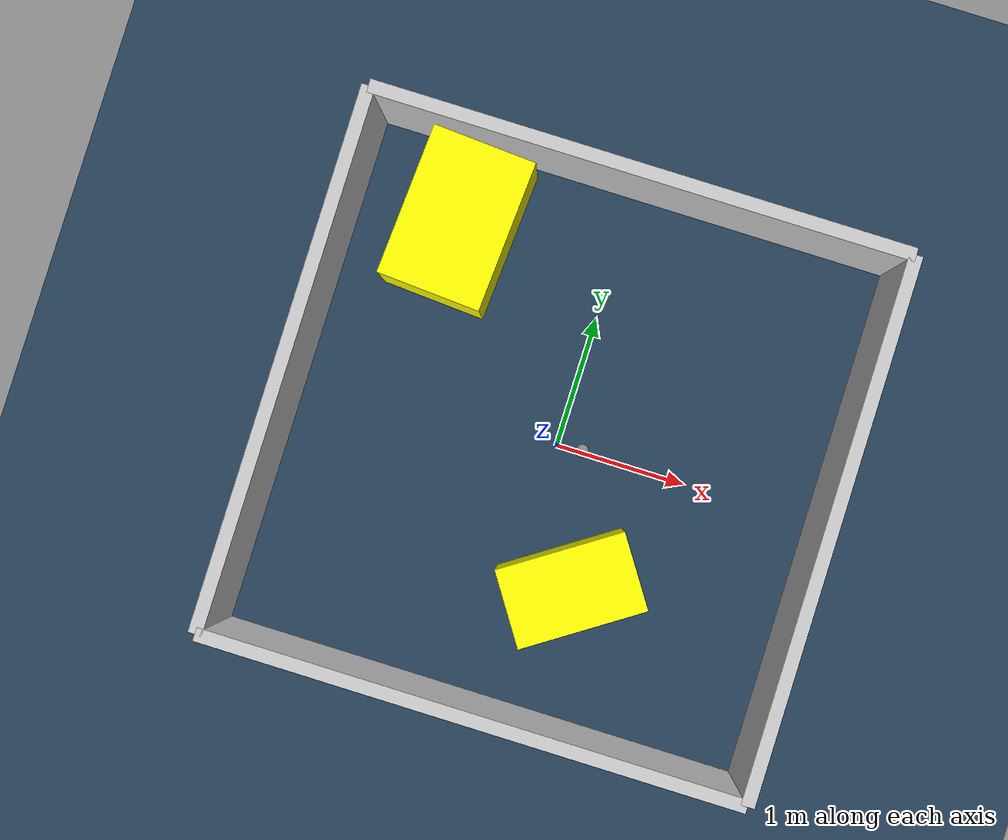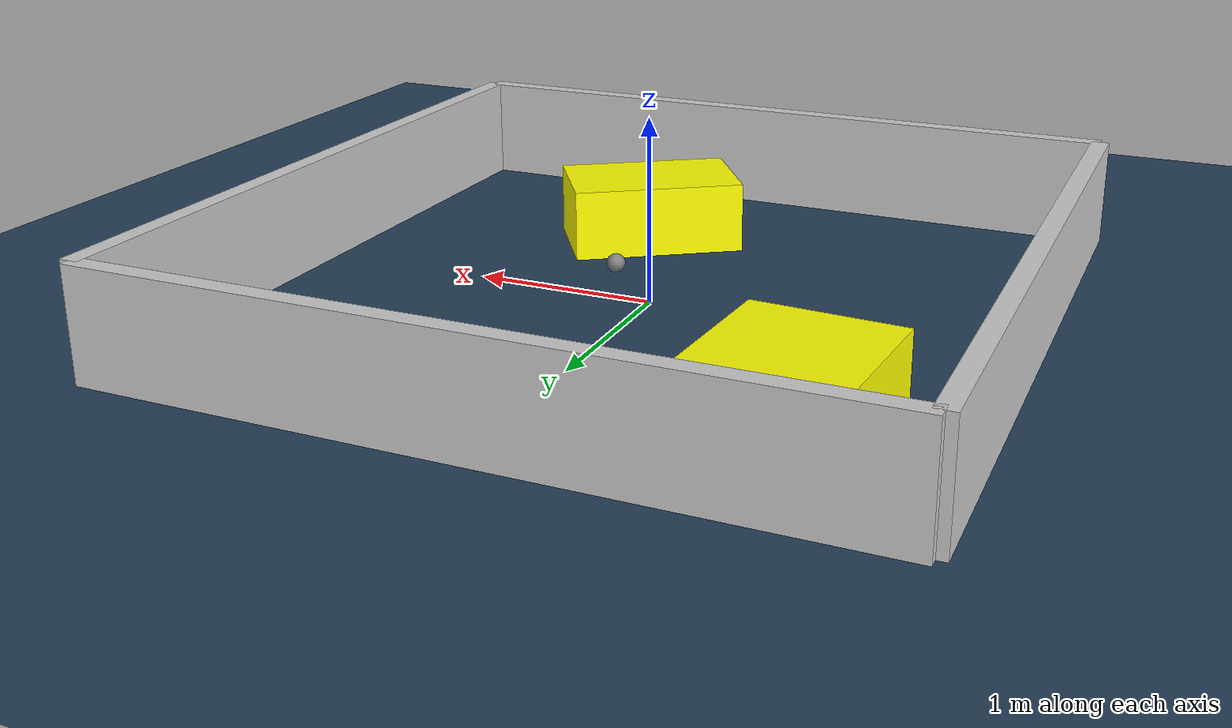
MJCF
<?xml version="1.0" ?>
<mujoco model="generated_environment">
  <option timestep="0.01" integrator="RK4" cone="elliptic"/>
  <default>
    <geom density="1"/>
  </default>
  <asset>
    <texture builtin="gradient" height="3072" rgb1="0.3 0.5 0.7" rgb2="0 0 0" type="skybox" width="512"/>
    <texture builtin="checker" height="300" mark="edge" markrgb="0.8 0.8 0.8" name="groundplane" rgb1="0.2 0.3 0.4" rgb2="0.1 0.2 0.3" type="2d" width="300"/>
    <material name="groundplane" reflectance="0.2" texrepeat="5 5" texture="groundplane" texuniform="true"/>
    <material name="robot" rgba="0.0 1.0 0.0 1"/>
  </asset>
  <worldbody>
    <light dir="0 0 -1" directional="true" pos="0 0 1.5"/>
    <geom condim="4" friction="1.0 0.005 0.001" material="groundplane" name="floor" size="0 0 0.05" type="plane"/>
    <body name="walls">
      <geom name="wall_1" condim="4" pos="-2.0 0.0 0.3" rgba="0.800000011920929 0.800000011920929 0.800000011920929 1.0" size="0.05 2.0 0.3" type="box"/>
      <geom name="wall_2" condim="4" pos="2.0 0.0 0.3" rgba="0.800000011920929 0.800000011920929 0.800000011920929 1.0" size="0.05 2.0 0.3" type="box"/>
      <geom name="wall_3" condim="4" pos="0.0 -2.0 0.3" rgba="0.800000011920929 0.800000011920929 0.800000011920929 1.0" size="2.0 0.05 0.3" type="box"/>
      <geom name="wall_4" condim="4" pos="0.0 2.0 0.3" rgba="0.800000011920929 0.800000011920929 0.800000011920929 1.0" size="2.0 0.05 0.3" type="box"/>
    </body>
    <body name="robot">
      <joint name="joint_x" type="slide" pos="0 0 0" axis="1 0 0"/>
      <joint name="joint_y" type="slide" pos="0 0 0" axis="0 1 0"/>
      <geom name="robot" type="sphere" pos="0.18868785974765023 0.013496764487500812 0.2" size="0.05" mass="5." friction="1.0 0.005 0.0001" condim="4"/>
      <site name="sensor_ball"/>
    </body>
    <body name="obstacle_1_movable">
      <geom name="obstacle_1_movable" condim="4" pos="0.4089041198319996 -0.9637232375977262 0.2" euler="0 0 33.63326030000518" friction="1.0 0.005 0.001" rgba="1 1 0 1" size="0.485173650411842 0.29548644331210233 0.2" type="box" mass="0.1"/>
      <joint type="free"/>
    </body>
    <body name="obstacle_2_movable">
      <geom name="obstacle_2_movable" condim="4" pos="-1.170790780686736 1.3398819586838302 0.2" euler="0 0 356.1591192873213" friction="1.0 0.005 0.001" rgba="1 1 0 1" size="0.3920687806769868 0.571718627956737 0.2" type="box" mass="0.1"/>
      <joint type="free"/>
    </body>
  </worldbody>
  <actuator>
    <motor name="actuator_x" joint="joint_x" gear="1" ctrlrange="-1 1"/>
    <motor name="actuator_y" joint="joint_y" gear="1" ctrlrange="-1 1"/>
  </actuator>
</mujoco>
